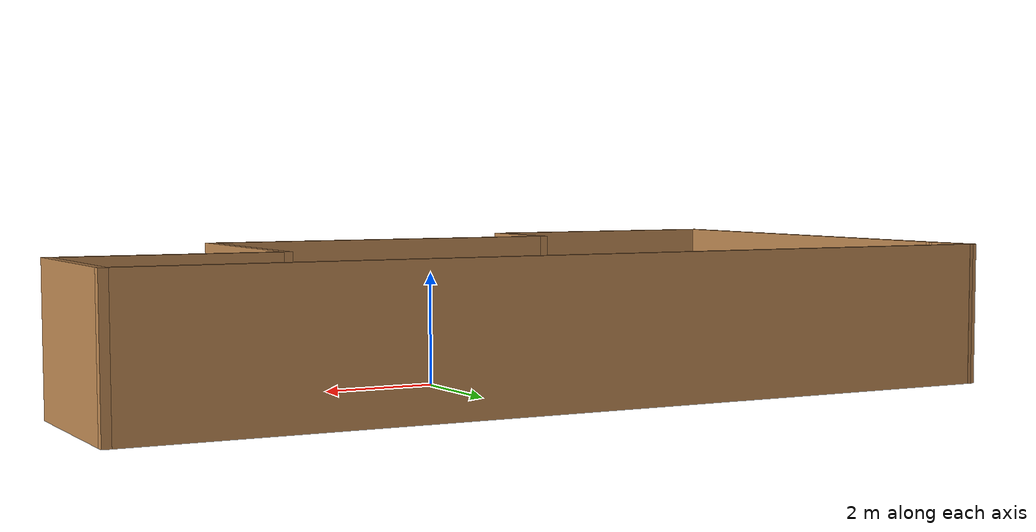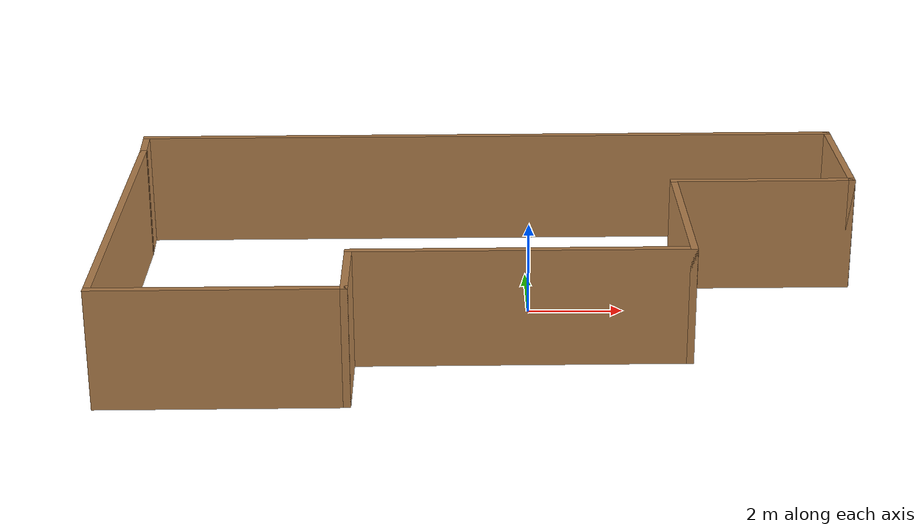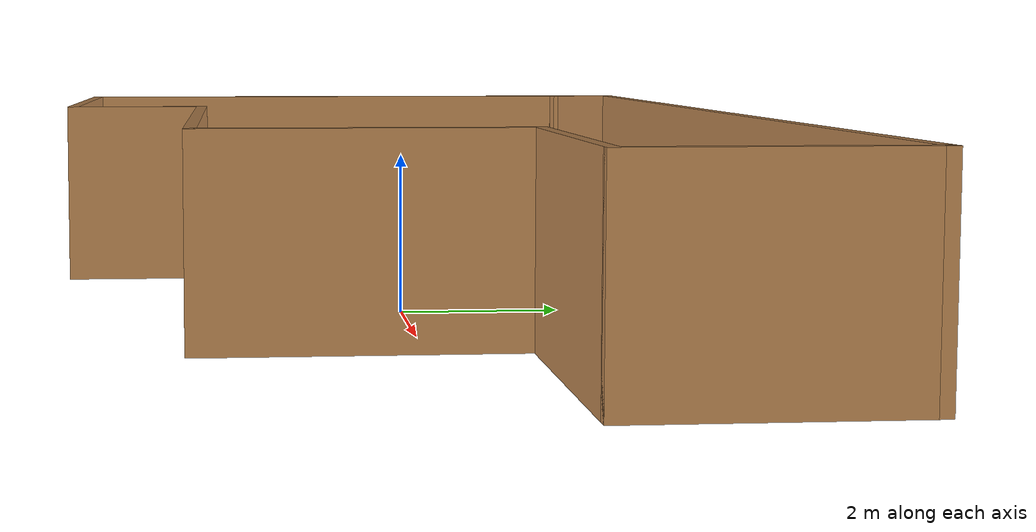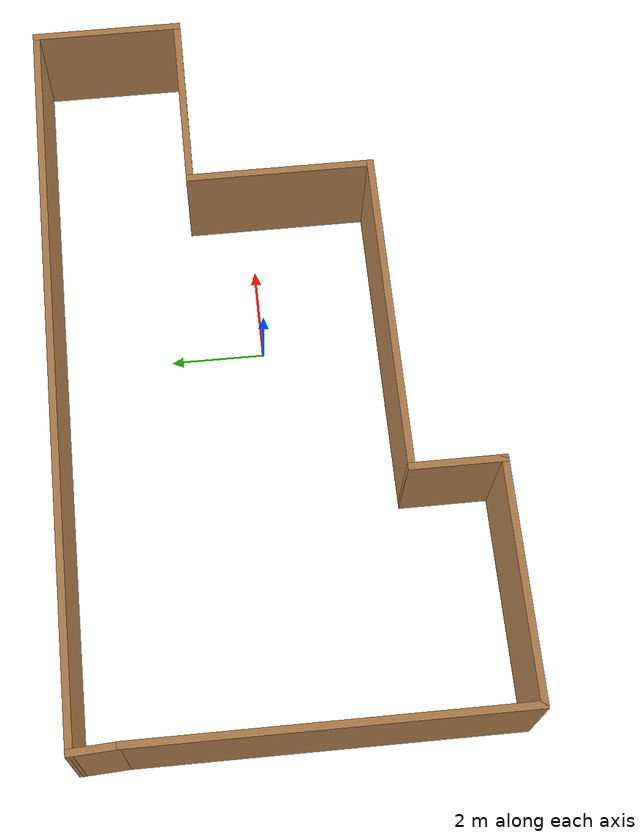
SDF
<?xml version='1.0'?>
<sdf version='1.6'>
  <model name='mymodel'>
    <pose frame=''>-0.783119 -0.027878 0 0 -0 0</pose>
    <link name='Wall_0'>
      <collision name='Wall_0_Collision'>
        <geometry>
          <box>
            <size>8 0.15 2.5</size>
          </box>
        </geometry>
        <pose frame=''>0 0 1.25 0 -0 0</pose>
      </collision>
      <visual name='Wall_0_Visual'>
        <pose frame=''>0 0 1.25 0 -0 0</pose>
        <geometry>
          <box>
            <size>8 0.15 2.5</size>
          </box>
        </geometry>
        <material>
          <script>
            <uri>file://media/materials/scripts/gazebo.material</uri>
            <name>Gazebo/Wood</name>
          </script>
          <ambient>1 1 1 1</ambient>
        </material>
        <meta>
          <layer>0</layer>
        </meta>
      </visual>
      <pose frame=''>-7.74808 -0.476919 0 0 -0 -1.5708</pose>
    </link>
    <link name='Wall_1'>
      <collision name='Wall_1_Collision'>
        <geometry>
          <box>
            <size>5 0.15 2.5</size>
          </box>
        </geometry>
        <pose frame=''>0 0 1.25 0 -0 0</pose>
      </collision>
      <visual name='Wall_1_Visual'>
        <pose frame=''>0 0 1.25 0 -0 0</pose>
        <geometry>
          <box>
            <size>5 0.15 2.5</size>
          </box>
        </geometry>
        <material>
          <script>
            <uri>file://media/materials/scripts/gazebo.material</uri>
            <name>Gazebo/Wood</name>
          </script>
          <ambient>1 1 1 1</ambient>
        </material>
        <meta>
          <layer>0</layer>
        </meta>
      </visual>
      <pose frame=''>-5.32308 -4.40192 0 0 -0 0</pose>
    </link>
    <link name='Wall_2'>
      <collision name='Wall_2_Collision'>
        <geometry>
          <box>
            <size>2 0.15 2.5</size>
          </box>
        </geometry>
        <pose frame=''>0 0 1.25 0 -0 0</pose>
      </collision>
      <visual name='Wall_2_Visual'>
        <pose frame=''>0 0 1.25 0 -0 0</pose>
        <geometry>
          <box>
            <size>2 0.15 2.5</size>
          </box>
        </geometry>
        <material>
          <script>
            <uri>file://media/materials/scripts/gazebo.material</uri>
            <name>Gazebo/Wood</name>
          </script>
          <ambient>1 1 1 1</ambient>
        </material>
        <meta>
          <layer>0</layer>
        </meta>
      </visual>
      <pose frame=''>-2.89808 -3.47692 0 0 -0 1.5708</pose>
    </link>
    <link name='Wall_3'>
      <collision name='Wall_3_Collision'>
        <geometry>
          <box>
            <size>7 0.15 2.5</size>
          </box>
        </geometry>
        <pose frame=''>0 0 1.25 0 -0 0</pose>
      </collision>
      <visual name='Wall_3_Visual'>
        <pose frame=''>0 0 1.25 0 -0 0</pose>
        <geometry>
          <box>
            <size>7 0.15 2.5</size>
          </box>
        </geometry>
        <material>
          <script>
            <uri>file://media/materials/scripts/gazebo.material</uri>
            <name>Gazebo/Wood</name>
          </script>
          <ambient>1 1 1 1</ambient>
        </material>
        <meta>
          <layer>0</layer>
        </meta>
      </visual>
      <pose frame=''>0.526919 -2.55192 0 0 -0 0</pose>
    </link>
    <link name='Wall_4'>
      <collision name='Wall_4_Collision'>
        <geometry>
          <box>
            <size>4 0.15 2.5</size>
          </box>
        </geometry>
        <pose frame=''>0 0 1.25 0 -0 0</pose>
      </collision>
      <visual name='Wall_4_Visual'>
        <pose frame=''>0 0 1.25 0 -0 0</pose>
        <geometry>
          <box>
            <size>4 0.15 2.5</size>
          </box>
        </geometry>
        <material>
          <script>
            <uri>file://media/materials/scripts/gazebo.material</uri>
            <name>Gazebo/Wood</name>
          </script>
          <ambient>1 1 1 1</ambient>
        </material>
        <meta>
          <layer>0</layer>
        </meta>
      </visual>
      <pose frame=''>3.95192 -0.626919 0 0 -0 1.5708</pose>
    </link>
    <link name='Wall_5'>
      <collision name='Wall_5_Collision'>
        <geometry>
          <box>
            <size>4 0.15 2.5</size>
          </box>
        </geometry>
        <pose frame=''>0 0 1.25 0 -0 0</pose>
      </collision>
      <visual name='Wall_5_Visual'>
        <pose frame=''>0 0 1.25 0 -0 0</pose>
        <geometry>
          <box>
            <size>4 0.15 2.5</size>
          </box>
        </geometry>
        <material>
          <script>
            <uri>file://media/materials/scripts/gazebo.material</uri>
            <name>Gazebo/Wood</name>
          </script>
          <ambient>1 1 1 1</ambient>
        </material>
        <meta>
          <layer>0</layer>
        </meta>
      </visual>
      <pose frame=''>5.87692 1.29808 0 0 -0 0</pose>
    </link>
    <link name='Wall_6'>
      <collision name='Wall_6_Collision'>
        <geometry>
          <box>
            <size>3.25 0.15 2.5</size>
          </box>
        </geometry>
        <pose frame=''>0 0 1.25 0 -0 0</pose>
      </collision>
      <visual name='Wall_6_Visual'>
        <pose frame=''>0 0 1.25 0 -0 0</pose>
        <geometry>
          <box>
            <size>3.25 0.15 2.5</size>
          </box>
        </geometry>
        <material>
          <script>
            <uri>file://media/materials/scripts/gazebo.material</uri>
            <name>Gazebo/Wood</name>
          </script>
          <ambient>1 1 1 1</ambient>
        </material>
        <meta>
          <layer>0</layer>
        </meta>
      </visual>
      <pose frame=''>7.80192 2.84808 0 0 -0 1.5708</pose>
    </link>
    <link name='Wall_7'>
      <collision name='Wall_7_Collision'>
        <geometry>
          <box>
            <size>15.75 0.15 2.5</size>
          </box>
        </geometry>
        <pose frame=''>0 0 1.25 0 -0 0</pose>
      </collision>
      <visual name='Wall_7_Visual'>
        <pose frame=''>0 0 1.25 0 -0 0</pose>
        <geometry>
          <box>
            <size>15.75 0.15 2.5</size>
          </box>
        </geometry>
        <material>
          <script>
            <uri>file://media/materials/scripts/gazebo.material</uri>
            <name>Gazebo/Wood</name>
          </script>
          <ambient>1 1 1 1</ambient>
        </material>
        <meta>
          <layer>0</layer>
        </meta>
      </visual>
      <pose frame=''>0.001919 4.39808 0 0 -0 3.14159</pose>
    </link>
    <link name='Wall_8'>
      <collision name='Wall_8_Collision'>
        <geometry>
          <box>
            <size>1.10132 0.15 2.5</size>
          </box>
        </geometry>
        <pose frame=''>0 0 1.25 0 -0 0</pose>
      </collision>
      <visual name='Wall_8_Visual'>
        <pose frame=''>0 0 1.25 0 -0 0</pose>
        <geometry>
          <box>
            <size>1.10132 0.15 2.5</size>
          </box>
        </geometry>
        <material>
          <script>
            <uri>file://media/materials/scripts/gazebo.material</uri>
            <name>Gazebo/Wood</name>
          </script>
          <ambient>1 1 1 1</ambient>
        </material>
        <meta>
          <layer>0</layer>
        </meta>
      </visual>
      <pose frame=''>-7.77308 3.92308 0 0 -0 -1.51821</pose>
    </link>
    <static>1</static>
  </model>
</sdf>
